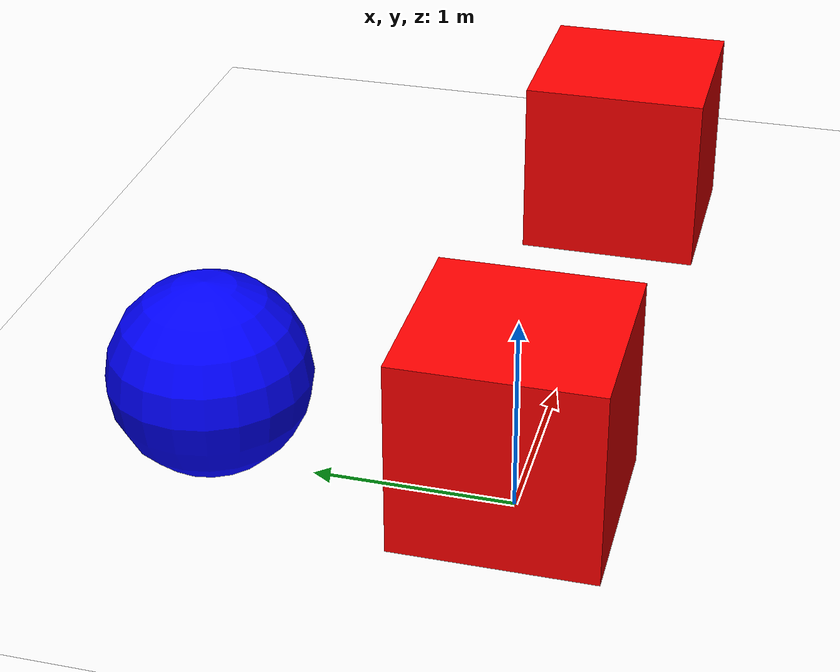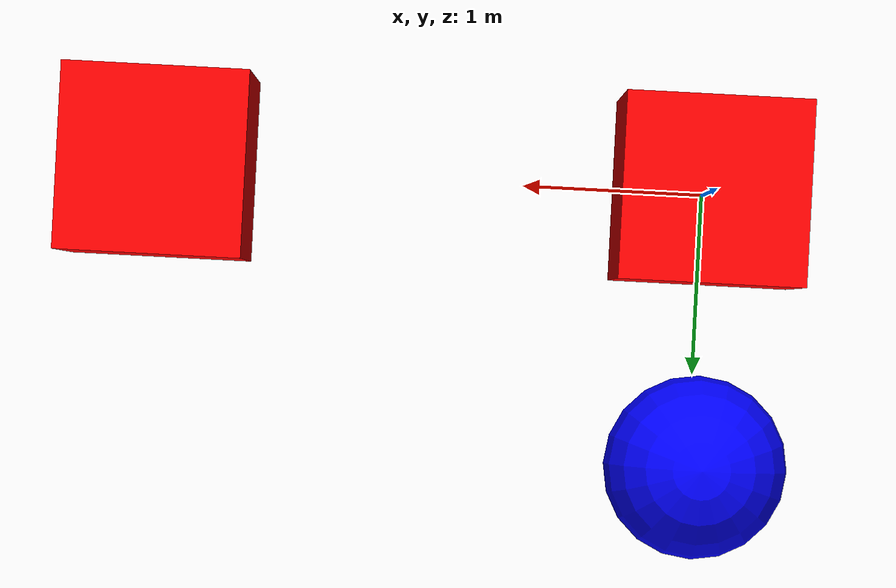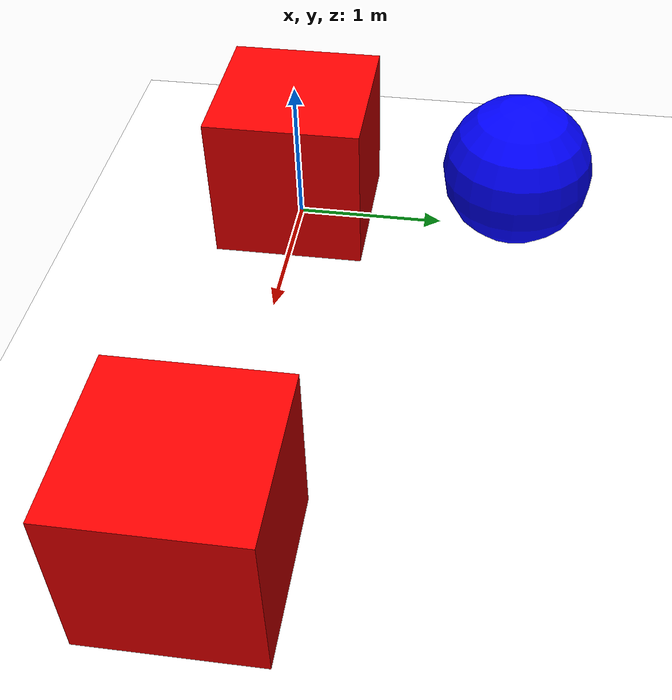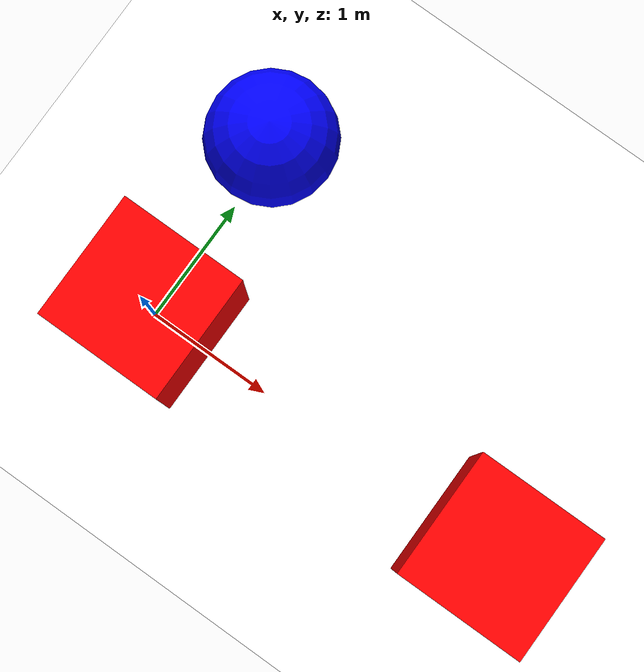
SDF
<?xml version="1.0" ?>
<sdf version="1.6">
  <world name="move_entity">
    <physics name="1ms" type="ode">
      <max_step_size>0.001</max_step_size>
      <real_time_factor>1.0</real_time_factor>
    </physics>
    <plugin
      filename="libignition-gazebo-physics-system.so"
      name="ignition::gazebo::systems::Physics">
    </plugin>
    <plugin
      filename="libignition-gazebo-user-commands-system.so"
      name="ignition::gazebo::systems::UserCommands">
    </plugin>
    <plugin
      filename="libignition-gazebo-scene-broadcaster-system.so"
      name="ignition::gazebo::systems::SceneBroadcaster">
    </plugin>

    <gui fullscreen="0">

      <!-- 3D scene -->
      <plugin filename="Scene3D" name="3D View">
        <ignition-gui>
          <title>3D View</title>
          <property type="bool" key="showTitleBar">false</property>
          <property type="string" key="state">docked</property>
          <property type="double" key="width">402</property>
          <property type="double" key="height">359</property>
        </ignition-gui>

        <engine>ogre2</engine>
        <scene>scene</scene>
        <ambient_light>1 1 1</ambient_light>
        <background_color>0.8 0.8 0.8</background_color>
        <camera_pose>-6 0 6 0 0.5 0</camera_pose>
        <service>/world/move_entity/scene/info</service>
        <pose_topic>/world/move_entity/pose/info</pose_topic>
        <scene_topic>/world/move_entity/scene/info</scene_topic>
        <deletion_topic>/world/move_entity/scene/deletion</deletion_topic>
      </plugin>

      <!-- World control -->
      <plugin filename="WorldControl" name="World control">
        <ignition-gui>
          <title>World control</title>
          <property type="bool" key="showTitleBar">false</property>
          <property type="bool" key="resizable">false</property>
          <property type="double" key="height">72</property>
          <property type="double" key="width">121</property>
          <property type="double" key="z">1</property>

          <property type="string" key="state">floating</property>
          <anchors target="3D View">
            <line own="left" target="left"/>
            <line own="bottom" target="bottom"/>
          </anchors>
        </ignition-gui>

        <play_pause>true</play_pause>
        <step>true</step>
        <start_paused>true</start_paused>
        <service>/world/move_entity/control</service>
        <stats_topic>/world/move_entity/stats</stats_topic>

      </plugin>

      <!-- World statistics -->
      <plugin filename="WorldStats" name="World stats">
        <ignition-gui>
          <title>World stats</title>
          <property type="bool" key="showTitleBar">false</property>
          <property type="bool" key="resizable">false</property>
          <property type="double" key="height">110</property>
          <property type="double" key="width">290</property>
          <property type="double" key="z">1</property>

          <property type="string" key="state">floating</property>
          <anchors target="3D View">
            <line own="right" target="right"/>
            <line own="bottom" target="bottom"/>
          </anchors>
        </ignition-gui>

        <sim_time>true</sim_time>
        <real_time>true</real_time>
        <real_time_factor>true</real_time_factor>
        <iterations>true</iterations>
        <topic>/world/move_entity/stats</topic>

      </plugin>

    </gui>

    <light type="directional" name="sun">
      <cast_shadows>true</cast_shadows>
      <pose>0 0 10 0 0 0</pose>
      <diffuse>1 1 1 1</diffuse>
      <specular>1 1 1 1</specular>
      <attenuation>
        <range>1000</range>
        <constant>0.9</constant>
        <linear>0.01</linear>
        <quadratic>0.001</quadratic>
      </attenuation>
      <direction>-0.5 0.1 -0.9</direction>
    </light>

    <model name="ground_plane">
      <static>true</static>
      <link name="link">
        <collision name="collision">
          <geometry>
            <plane>
              <normal>0 0 1</normal>
            </plane>
          </geometry>
          <surface>
            <friction><ode><mu>0</mu></ode></friction>
          </surface>
        </collision>
        <visual name="visual">
          <geometry>
            <plane>
              <normal>0 0 1</normal>
              <size>100 100</size>
            </plane>
          </geometry>
          <material>
            <ambient>1 1 1 1</ambient>
            <diffuse>1 1 1 1</diffuse>
            <specular>1 1 1 1</specular>
          </material>
        </visual>
      </link>
    </model>

    <model name="box">
      <pose>0 0 0.5 0 0 0</pose>
      <link name="box_link">
        <inertial>
          <inertia>
            <ixx>1</ixx>
            <ixy>0</ixy>
            <ixz>0</ixz>
            <iyy>1</iyy>
            <iyz>0</iyz>
            <izz>1</izz>
          </inertia>
          <mass>1.0</mass>
        </inertial>
        <collision name="box_collision">
          <geometry>
            <box>
              <size>1 1 1</size>
            </box>
          </geometry>
        </collision>

        <visual name="box_visual">
          <geometry>
            <box>
              <size>1 1 1</size>
            </box>
          </geometry>
          <material>
            <ambient>1 0 0 1</ambient>
            <diffuse>1 0 0 1</diffuse>
            <specular>1 0 0 1</specular>
          </material>
        </visual>
      </link>

      <link name="box_link2">
        <pose>3 0 0 0 0 0</pose>
        <inertial>
          <inertia>
            <ixx>1</ixx>
            <ixy>0</ixy>
            <ixz>0</ixz>
            <iyy>1</iyy>
            <iyz>0</iyz>
            <izz>1</izz>
          </inertia>
          <mass>1.0</mass>
        </inertial>
        <collision name="box_collision">
          <geometry>
            <box>
              <size>1 1 1</size>
            </box>
          </geometry>
        </collision>

        <visual name="box_visual">
          <geometry>
            <box>
              <size>1 1 1</size>
            </box>
          </geometry>
          <material>
            <ambient>1 0 0 1</ambient>
            <diffuse>1 0 0 1</diffuse>
            <specular>0.9 0.2 0.2 1</specular>
          </material>
        </visual>
      </link>
    <plugin
      filename="libignition-gazebo-move-entity-system.so"
      name="ignition::gazebo::systems::MoveEntity">
    </plugin>
    </model>

    <model name="sphere">
      <pose>0 1.5 0.5 0 0 0</pose>
      <static>true</static>
      <link name="sphere_link">
        <inertial>
          <inertia>
            <ixx>3</ixx>
            <ixy>0</ixy>
            <ixz>0</ixz>
            <iyy>3</iyy>
            <iyz>0</iyz>
            <izz>3</izz>
          </inertia>
          <mass>3.0</mass>
        </inertial>
        <collision name="sphere_collision">
          <geometry>
            <sphere>
              <radius>0.5</radius>
            </sphere>
          </geometry>
        </collision>

        <visual name="sphere_visual">
          <geometry>
            <sphere>
              <radius>0.5</radius>
            </sphere>
          </geometry>
          <material>
            <ambient>0 0 1 1</ambient>
            <diffuse>0 0 1 1</diffuse>
            <specular>0 0 1 1</specular>
          </material>
        </visual>
      </link>
    <plugin
      filename="libignition-gazebo-move-entity-system.so"
      name="ignition::gazebo::systems::MoveEntity">
    </plugin>
    </model>
  </world>
</sdf>
